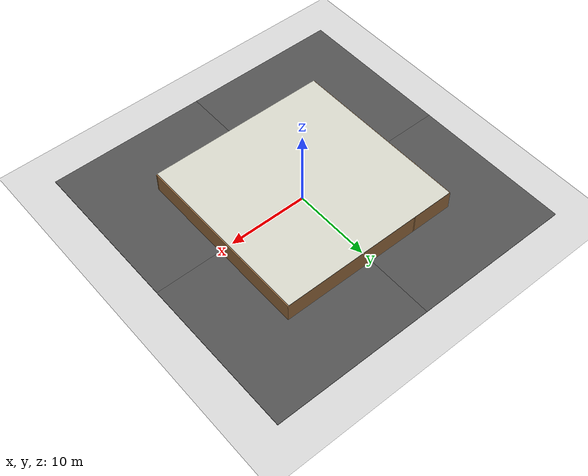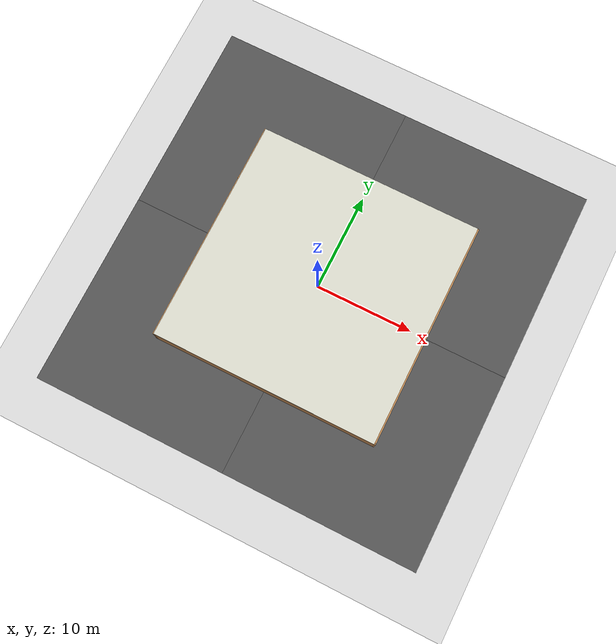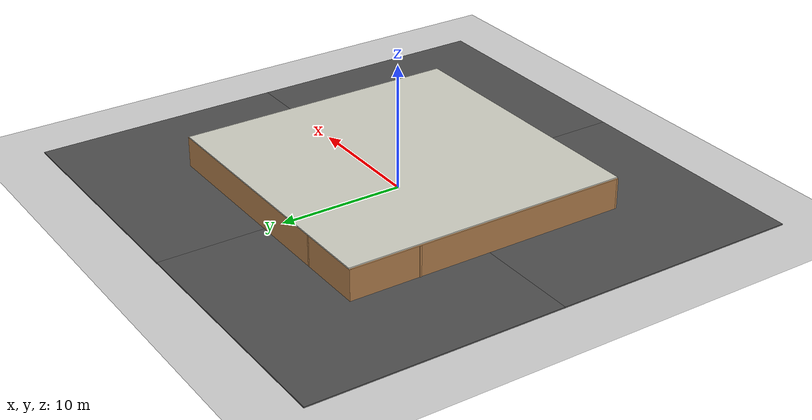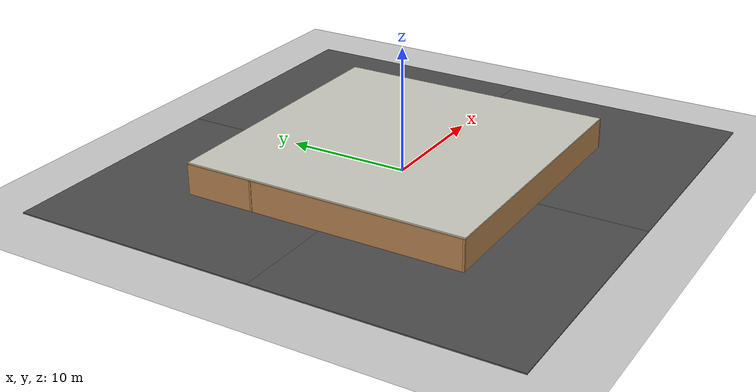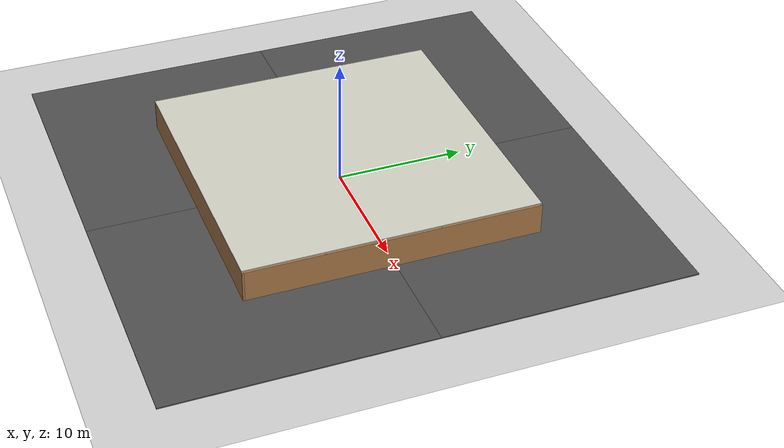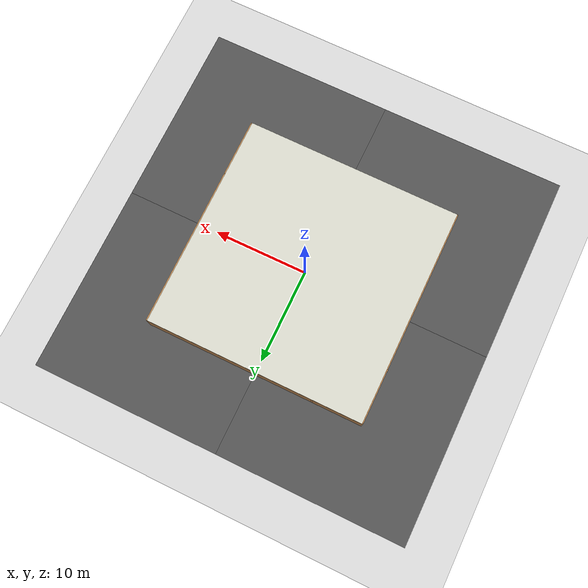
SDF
<sdf version="1.5">
 <world name="default">
  <scene>
   <sky><clouds><speed>12</speed></clouds></sky>
   <ambient>0.95 0.95 0.95 1</ambient>
   <background>0.3 0.3 0.3 1</background>
   <shadows>1</shadows>
  </scene>
  <light name="sun" type="directional">
   <pose>0 0 10 0 -0 0</pose>
   <diffuse>0.8 0.8 0.8 1</diffuse>
   <specular>0.2 0.2 0.2 1</specular>
   <attenuation>
    <range>1000</range>
    <constant>0.9</constant>
    <linear>0.01</linear>
    <quadratic>0.001</quadratic>
   </attenuation>
   <direction>-0.5 0.1 -0.9</direction>
   <spot><inner_angle>0</inner_angle><outer_angle>0</outer_angle><falloff>0</falloff></spot>
  </light>
  <model name="ground_plane">
   <static>1</static>
   <link name="link">
    <collision name="collision">
     <geometry><plane><normal>0 0 1</normal><size>100 100</size></plane></geometry>
     <surface>
      <contact><collide_bitmask>65535</collide_bitmask></contact>
      <friction><ode><mu>100</mu><mu2>50</mu2></ode></friction>
     </surface>
    </collision>
    <visual name="visual">
     <cast_shadows>0</cast_shadows>
     <geometry><plane><normal>0 0 1</normal><size>100 100</size></plane></geometry>
     <material>
      <script><uri>file://media/materials/scripts/gazebo.material</uri><name>Gazebo/Grey</name></script>
     </material>
    </visual>
   </link>
  </model>
  <model name="pilot_house">
   <link name="Floor">
    <collision name="Floor_Collision"><geometry><box><size>23 23 0.1</size></box></geometry></collision>
    <visual name="Floor_Visual">
     <geometry><box><size>23 23 0.1</size></box></geometry>
     <material>
      <script><uri>file://media/materials/scripts/gazebo.material</uri><name>Gazebo/Footpath</name></script>
      <ambient>1 1 1 1</ambient>
     </material>
     <meta><layer>0</layer></meta>
    </visual>
    <pose>0 0 -0.05 0 -0 0</pose>
   </link>
   <link name="Roof">
    <collision name="Roof_Collision"><geometry><box><size>23 23 0.1</size></box></geometry></collision>
    <visual name="Roof_Visual">
     <geometry><box><size>23 23 0.1</size></box></geometry>
     <material>
      <script><uri>file://media/materials/scripts/gazebo.material</uri><name>Gazebo/PaintedWall</name></script>
      <ambient>0.8 0.8 0.8 1</ambient>
     </material>
     <meta><layer>0</layer></meta>
    </visual>
    <pose>0 0 2.55 0 -0 0</pose>
   </link>
   <link name="Wall_10">
    <collision name="Wall_10_Collision">
     <geometry><box><size>23 0.15 2.5</size></box></geometry>
     <pose>0 0 1.25 0 -0 0</pose>
    </collision>
    <visual name="Wall_10_Visual">
     <pose>0 0 1.25 0 -0 0</pose>
     <geometry><box><size>23 0.15 2.5</size></box></geometry>
     <material>
      <script><uri>file://media/materials/scripts/gazebo.material</uri><name>Gazebo/Wood</name></script>
      <ambient>1 1 1 1</ambient>
     </material>
     <meta><layer>0</layer></meta>
    </visual>
    <pose>-11.5307 -0.000635 0 0 -0 1.5708</pose>
   </link>
   <link name="Wall_11">
    <collision name="Wall_11_Collision">
     <geometry><box><size>23.25 0.15 2.5</size></box></geometry>
     <pose>0 0 1.25 0 -0 0</pose>
    </collision>
    <visual name="Wall_11_Visual">
     <pose>0 0 1.25 0 -0 0</pose>
     <geometry><box><size>23.25 0.15 2.5</size></box></geometry>
     <material>
      <script><uri>file://media/materials/scripts/gazebo.material</uri><name>Gazebo/Wood</name></script>
      <ambient>1 1 1 1</ambient>
     </material>
     <meta><layer>0</layer></meta>
    </visual>
    <pose>0.019314 11.4244 0 0 -0 0</pose>
   </link>
   <link name="Wall_12">
    <collision name="Wall_12_Collision">
     <geometry><box><size>23 0.15 2.5</size></box></geometry>
     <pose>0 0 1.25 0 -0 0</pose>
    </collision>
    <visual name="Wall_12_Visual">
     <pose>0 0 1.25 0 -0 0</pose>
     <geometry><box><size>23 0.15 2.5</size></box></geometry>
     <material>
      <script><uri>file://media/materials/scripts/gazebo.material</uri><name>Gazebo/Wood</name></script>
      <ambient>1 1 1 1</ambient>
     </material>
     <meta><layer>0</layer></meta>
    </visual>
    <pose>11.5693 -0.000635 0 0 -0 -1.5708</pose>
   </link>
   <link name="Wall_13">
    <collision name="Wall_13_Collision">
     <geometry><box><size>23.25 0.15 2.5</size></box></geometry>
     <pose>0 0 1.25 0 -0 0</pose>
    </collision>
    <visual name="Wall_13_Visual">
     <pose>0 0 1.25 0 -0 0</pose>
     <geometry><box><size>23.25 0.15 2.5</size></box></geometry>
     <material>
      <script><uri>file://media/materials/scripts/gazebo.material</uri><name>Gazebo/Wood</name></script>
      <ambient>1 1 1 1</ambient>
     </material>
     <meta><layer>0</layer></meta>
    </visual>
    <pose>0.019314 -11.4256 0 0 -0 3.14159</pose>
   </link>
   <link name="Wall_16">
    <collision name="Wall_16_Collision">
     <geometry><box><size>5.5 0.15 2.5</size></box></geometry>
     <pose>0 0 1.25 0 -0 0</pose>
    </collision>
    <visual name="Wall_16_Visual">
     <pose>0 0 1.25 0 -0 0</pose>
     <geometry><box><size>5.5 0.15 2.5</size></box></geometry>
     <material>
      <script><uri>file://media/materials/scripts/gazebo.material</uri><name>Gazebo/Wood</name></script>
      <ambient>1 1 1 1</ambient>
     </material>
     <meta><layer>0</layer></meta>
    </visual>
    <pose>-8.89432 5.84345 0 0 -0 0</pose>
   </link>
   <link name="Wall_18">
    <collision name="Wall_18_Collision">
     <geometry><box><size>3.5 0.15 2.5</size></box></geometry>
     <pose>0 0 1.25 0 -0 0</pose>
    </collision>
    <visual name="Wall_18_Visual">
     <pose>0 0 1.25 0 -0 0</pose>
     <geometry><box><size>3.5 0.15 2.5</size></box></geometry>
     <material>
      <script><uri>file://media/materials/scripts/gazebo.material</uri><name>Gazebo/Wood</name></script>
      <ambient>1 1 1 1</ambient>
     </material>
     <meta><layer>0</layer></meta>
    </visual>
    <pose>-6.21651 9.75064 0 0 -0 -1.5708</pose>
   </link>
   <link name="Wall_20">
    <collision name="Wall_20_Collision">
     <geometry><box><size>3.5 0.15 2.5</size></box></geometry>
     <pose>0 0 1.25 0 -0 0</pose>
    </collision>
    <visual name="Wall_20_Visual">
     <pose>0 0 1.25 0 -0 0</pose>
     <geometry><box><size>3.5 0.15 2.5</size></box></geometry>
     <material>
      <script><uri>file://media/materials/scripts/gazebo.material</uri><name>Gazebo/Wood</name></script>
      <ambient>1 1 1 1</ambient>
     </material>
     <meta><layer>0</layer></meta>
    </visual>
    <pose>-6.21932 4.16845 0 0 -0 -1.5708</pose>
   </link>
   <link name="Wall_22">
    <collision name="Wall_22_Collision">
     <geometry><box><size>4.5 0.15 2.5</size></box></geometry>
     <pose>0 0 1.25 0 -0 0</pose>
    </collision>
    <visual name="Wall_22_Visual">
     <pose>0 0 1.25 0 -0 0</pose>
     <geometry><box><size>4.5 0.15 2.5</size></box></geometry>
     <material>
      <script><uri>file://media/materials/scripts/gazebo.material</uri><name>Gazebo/Wood</name></script>
      <ambient>1 1 1 1</ambient>
     </material>
     <meta><layer>0</layer></meta>
    </visual>
    <pose>-6.26868 -1.65371 0 0 -0 -1.5708</pose>
   </link>
   <link name="Wall_23">
    <collision name="Wall_23_Collision">
     <geometry><box><size>5.25 0.15 2.5</size></box></geometry>
     <pose>0 0 1.25 0 -0 0</pose>
    </collision>
    <visual name="Wall_23_Visual">
     <pose>0 0 1.25 0 -0 0</pose>
     <geometry><box><size>5.25 0.15 2.5</size></box></geometry>
     <material>
      <script><uri>file://media/materials/scripts/gazebo.material</uri><name>Gazebo/Wood</name></script>
      <ambient>1 1 1 1</ambient>
     </material>
     <meta><layer>0</layer></meta>
    </visual>
    <pose>-8.81869 -3.82871 0 0 -0 3.14159</pose>
   </link>
   <link name="Wall_25">
    <collision name="Wall_25_Collision">
     <geometry><box><size>12.5 0.15 2.5</size></box></geometry>
     <pose>0 0 1.25 0 -0 0</pose>
    </collision>
    <visual name="Wall_25_Visual">
     <pose>0 0 1.25 0 -0 0</pose>
     <geometry><box><size>12.5 0.15 2.5</size></box></geometry>
     <material>
      <script><uri>file://media/materials/scripts/gazebo.material</uri><name>Gazebo/Wood</name></script>
      <ambient>1 1 1 1</ambient>
     </material>
     <meta><layer>0</layer></meta>
    </visual>
    <pose>5.34762 -5.32219 0 0 -0 3.14159</pose>
   </link>
   <link name="Wall_26">
    <collision name="Wall_26_Collision">
     <geometry><box><size>6.25 0.15 2.5</size></box></geometry>
     <pose>0 0 1.25 0 -0 0</pose>
    </collision>
    <visual name="Wall_26_Visual">
     <pose>0 0 1.25 0 -0 0</pose>
     <geometry><box><size>6.25 0.15 2.5</size></box></geometry>
     <material>
      <script><uri>file://media/materials/scripts/gazebo.material</uri><name>Gazebo/Wood</name></script>
      <ambient>1 1 1 1</ambient>
     </material>
     <meta><layer>0</layer></meta>
    </visual>
    <pose>-0.827381 -2.27219 0 0 -0 1.5708</pose>
   </link>
   <link name="Wall_28">
    <collision name="Wall_28_Collision">
     <geometry><box><size>2.25 0.15 2.5</size></box></geometry>
     <pose>0 0 1.25 0 -0 0</pose>
    </collision>
    <visual name="Wall_28_Visual">
     <pose>0 0 1.25 0 -0 0</pose>
     <geometry><box><size>2.25 0.15 2.5</size></box></geometry>
     <material>
      <script><uri>file://media/materials/scripts/gazebo.material</uri><name>Gazebo/Wood</name></script>
      <ambient>1 1 1 1</ambient>
     </material>
     <meta><layer>0</layer></meta>
    </visual>
    <pose>0.222619 0.77781 0 0 -0 0</pose>
   </link>
   <link name="Wall_30">
    <collision name="Wall_30_Collision">
     <geometry><box><size>5.75 0.15 2.5</size></box></geometry>
     <pose>0 0 1.25 0 -0 0</pose>
    </collision>
    <visual name="Wall_30_Visual">
     <pose>0 0 1.25 0 -0 0</pose>
     <geometry><box><size>5.75 0.15 2.5</size></box></geometry>
     <material>
      <script><uri>file://media/materials/scripts/gazebo.material</uri><name>Gazebo/Wood</name></script>
      <ambient>1 1 1 1</ambient>
     </material>
     <meta><layer>0</layer></meta>
    </visual>
    <pose>6.24498 0.83243 0 0 -0 0</pose>
   </link>
   <link name="Wall_32">
    <collision name="Wall_32_Collision">
     <geometry><box><size>6.25 0.15 2.5</size></box></geometry>
     <pose>0 0 1.25 0 -0 0</pose>
    </collision>
    <visual name="Wall_32_Visual">
     <pose>0 0 1.25 0 -0 0</pose>
     <geometry><box><size>6.25 0.15 2.5</size></box></geometry>
     <material>
      <script><uri>file://media/materials/scripts/gazebo.material</uri><name>Gazebo/Wood</name></script>
      <ambient>1 1 1 1</ambient>
     </material>
     <meta><layer>0</layer></meta>
    </visual>
    <pose>6.12172 -2.26294 0 0 -0 -1.5708</pose>
   </link>
   <link name="Wall_34">
    <collision name="Wall_34_Collision">
     <geometry><box><size>3.5 0.15 2.5</size></box></geometry>
     <pose>0 0 1.25 0 -0 0</pose>
    </collision>
    <visual name="Wall_34_Visual">
     <pose>0 0 1.25 0 -0 0</pose>
     <geometry><box><size>3.5 0.15 2.5</size></box></geometry>
     <material>
      <script><uri>file://media/materials/scripts/gazebo.material</uri><name>Gazebo/Wood</name></script>
      <ambient>1 1 1 1</ambient>
     </material>
     <meta><layer>0</layer></meta>
    </visual>
    <pose>9.80022 3.55455 0 0 -0 3.14159</pose>
   </link>
   <link name="Wall_36">
    <collision name="Wall_36_Collision">
     <geometry><box><size>5 0.15 2.5</size></box></geometry>
     <pose>0 0 1.25 0 -0 0</pose>
    </collision>
    <visual name="Wall_36_Visual">
     <pose>0 0 1.25 0 -0 0</pose>
     <geometry><box><size>5 0.15 2.5</size></box></geometry>
     <material>
      <script><uri>file://media/materials/scripts/gazebo.material</uri><name>Gazebo/Wood</name></script>
      <ambient>1 1 1 1</ambient>
     </material>
     <meta><layer>0</layer></meta>
    </visual>
    <pose>3.28841 3.55455 0 0 -0 3.14159</pose>
   </link>
   <link name="Wall_37">
    <collision name="Wall_37_Collision">
     <geometry><box><size>8 0.15 2.5</size></box></geometry>
     <pose>0 0 1.25 0 -0 0</pose>
    </collision>
    <visual name="Wall_37_Visual">
     <pose>0 0 1.25 0 -0 0</pose>
     <geometry><box><size>8 0.15 2.5</size></box></geometry>
     <material>
      <script><uri>file://media/materials/scripts/gazebo.material</uri><name>Gazebo/Wood</name></script>
      <ambient>1 1 1 1</ambient>
     </material>
     <meta><layer>0</layer></meta>
    </visual>
    <pose>0.863406 7.47955 0 0 -0 1.5708</pose>
   </link>
   <static>1</static>
  </model>
  <model name="landing_pad">
   <static>1</static>
   <pose>3.0 0.5 0.25 0 0 0</pose>
   <link name="link">
    <collision name="collision"><geometry><box><size>1.5 1.5 0.5</size></box></geometry></collision>
    <visual name="visual">
     <geometry><box><size>1.5 1.5 0.5</size></box></geometry>
     <material>
      <ambient>1 0 0 1</ambient>
      <diffuse>1 0 0 1</diffuse>
      <specular>0.1 0.1 0.1 1</specular>
      <emissive>0 0 0 0</emissive>
     </material>
    </visual>
   </link>
  </model>
  <spherical_coordinates>
   <surface_model>EARTH_WGS84</surface_model>
   <latitude_deg>35.7223</latitude_deg>
   <longitude_deg>-120.767</longitude_deg>
   <elevation>280</elevation>
   <heading_deg>0</heading_deg>
  </spherical_coordinates>
  <physics name="default_physics" default="0" type="ode">
   <ode>
    <solver>
     <type>quick</type>
     <iters>10</iters>
     <sor>1.3</sor>
     <use_dynamic_moi_rescaling>0</use_dynamic_moi_rescaling>
    </solver>
    <constraints>
     <cfm>0</cfm>
     <erp>0.2</erp>
     <contact_max_correcting_vel>100</contact_max_correcting_vel>
     <contact_surface_layer>0.001</contact_surface_layer>
    </constraints>
   </ode>
   <max_step_size>0.004</max_step_size>
   <real_time_factor>1</real_time_factor>
   <real_time_update_rate>250</real_time_update_rate>
  </physics>
  <gravity>0 0 -9.8066</gravity>
  <magnetic_field>6e-06 2.3e-05 -4.2e-05</magnetic_field>
  <atmosphere type="adiabatic"/>
  <model name="asphalt_plane">
   <static>1</static>
   <link name="link">
    <collision name="collision"><geometry><box><size>20 20 0.1</size></box></geometry></collision>
    <visual name="visual">
     <cast_shadows>0</cast_shadows>
     <geometry><box><size>20 20 0.1</size></box></geometry>
     <material>
      <script>
       <uri>model://asphalt_plane/materials/scripts</uri>
       <uri>model://asphalt_plane/materials/textures</uri>
       <name>vrc/asphalt</name>
      </script>
     </material>
    </visual>
   </link>
   <pose>-10 10 0 0 -0 0</pose>
  </model>
  <model name="asphalt_plane_0">
   <static>1</static>
   <link name="link">
    <collision name="collision"><geometry><box><size>20 20 0.1</size></box></geometry></collision>
    <visual name="visual">
     <cast_shadows>0</cast_shadows>
     <geometry><box><size>20 20 0.1</size></box></geometry>
     <material>
      <script>
       <uri>model://asphalt_plane/materials/scripts</uri>
       <uri>model://asphalt_plane/materials/textures</uri>
       <name>vrc/asphalt</name>
      </script>
     </material>
    </visual>
   </link>
   <pose>-10 -10 0 0 -0 0</pose>
  </model>
  <model name="asphalt_plane_1">
   <static>1</static>
   <link name="link">
    <collision name="collision"><geometry><box><size>20 20 0.1</size></box></geometry></collision>
    <visual name="visual">
     <cast_shadows>0</cast_shadows>
     <geometry><box><size>20 20 0.1</size></box></geometry>
     <material>
      <script>
       <uri>model://asphalt_plane/materials/scripts</uri>
       <uri>model://asphalt_plane/materials/textures</uri>
       <name>vrc/asphalt</name>
      </script>
     </material>
    </visual>
   </link>
   <pose>10 -10 0 0 -0 0</pose>
  </model>
  <model name="asphalt_plane_2">
   <static>1</static>
   <link name="link">
    <collision name="collision"><geometry><box><size>20 20 0.1</size></box></geometry></collision>
    <visual name="visual">
     <cast_shadows>0</cast_shadows>
     <geometry><box><size>20 20 0.1</size></box></geometry>
     <material>
      <script>
       <uri>model://asphalt_plane/materials/scripts</uri>
       <uri>model://asphalt_plane/materials/textures</uri>
       <name>vrc/asphalt</name>
      </script>
     </material>
    </visual>
   </link>
   <pose>10 10 0 0 -0 0</pose>
  </model>
 </world>
</sdf>
